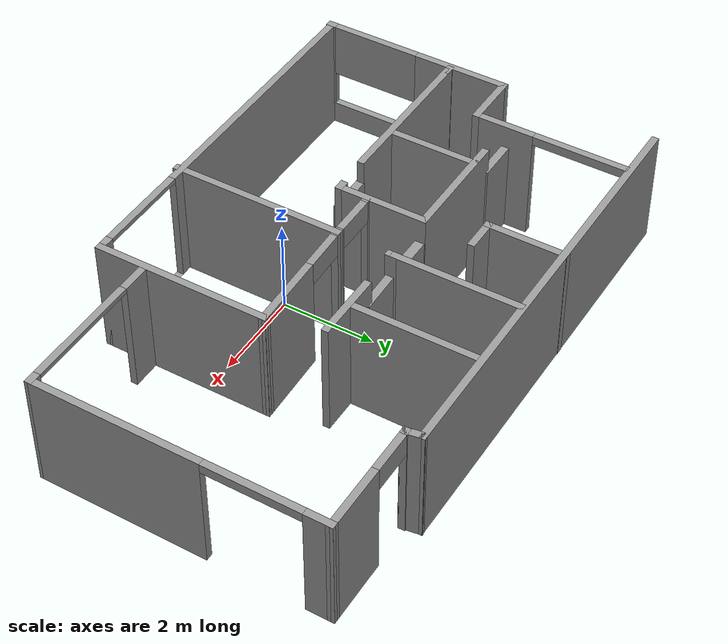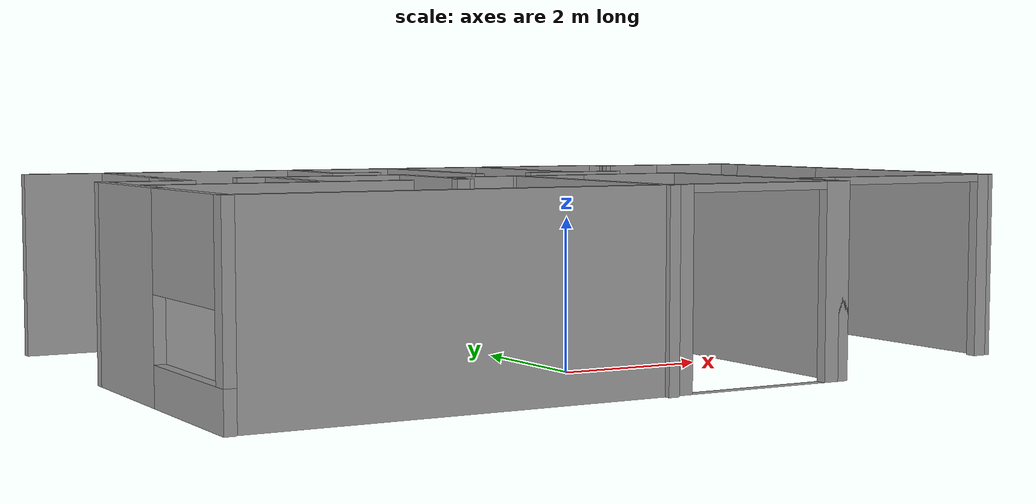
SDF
<?xml version='1.0'?>
<sdf version='1.6'>
  <model name='whiz_ex_window'>
    <pose frame=''>0.232213 1.38881 0 0 -0 0</pose>
    <link name='Door_6'>
      <collision name='Door_6_Collision'>
        <geometry>
          <box>
            <size>0.9 0.17 2</size>
          </box>
        </geometry>
        <pose frame=''>0 0 1 0 -0 0</pose>
      </collision>
      <visual name='Door_6_Visual'>
        <pose frame=''>0 0 1 0 -0 0</pose>
        <geometry>
          <box>
            <size>0.9 0.17 2</size>
          </box>
        </geometry>
        <material>
          <script>
            <uri>file://media/materials/scripts/gazebo.material</uri>
            <name>Gazebo/Grey</name>
          </script>
        </material>
      </visual>
      <pose frame=''>0.29567 1.0429 0 0 0 -3.12055</pose>
    </link>
    <link name='Door_7'>
      <collision name='Door_7_Collision'>
        <geometry>
          <box>
            <size>0.949838 0.2 2</size>
          </box>
        </geometry>
        <pose frame=''>0 0 1 0 -0 0</pose>
      </collision>
      <visual name='Door_7_Visual'>
        <pose frame=''>0 0 1 0 -0 0</pose>
        <geometry>
          <box>
            <size>0.949838 0.2 2</size>
          </box>
        </geometry>
        <material>
          <script>
            <uri>file://media/materials/scripts/gazebo.material</uri>
            <name>Gazebo/Grey</name>
          </script>
        </material>
      </visual>
      <pose frame=''>-0.776238 1.0429 0 0 -0 3.14159</pose>
    </link>
    <link name='Door_8'>
      <collision name='Door_8_Collision'>
        <geometry>
          <box>
            <size>0.9 0.17 2</size>
          </box>
        </geometry>
        <pose frame=''>0 0 1 0 -0 0</pose>
      </collision>
      <visual name='Door_8_Visual'>
        <pose frame=''>0 0 1 0 -0 0</pose>
        <geometry>
          <box>
            <size>0.9 0.17 2</size>
          </box>
        </geometry>
        <material>
          <script>
            <uri>file://media/materials/scripts/gazebo.material</uri>
            <name>Gazebo/Grey</name>
          </script>
        </material>
      </visual>
      <pose frame=''>-4.14363 1.09228 0 0 -0 0</pose>
    </link>
    <link name='Door_9'>
      <collision name='Door_9_Collision'>
        <geometry>
          <box>
            <size>0.9 0.17 2</size>
          </box>
        </geometry>
        <pose frame=''>0 0 1 0 -0 0</pose>
      </collision>
      <visual name='Door_9_Visual'>
        <pose frame=''>0 0 1 0 -0 0</pose>
        <geometry>
          <box>
            <size>0.9 0.17 2</size>
          </box>
        </geometry>
        <material>
          <script>
            <uri>file://media/materials/scripts/gazebo.material</uri>
            <name>Gazebo/Grey</name>
          </script>
        </material>
      </visual>
      <pose frame=''>-1.75347 -0.819856 0 0 0 -3.12358</pose>
    </link>
    <link name='Wall_0'>
      <pose frame=''>-1.6817 -3.67821 0 0 -0 0</pose>
      <visual name='Wall_0_Visual_0'>
        <pose frame=''>-1.17971 0 1.25 0 -0 0</pose>
        <geometry>
          <box>
            <size>5.89059 0.15 2.5</size>
          </box>
        </geometry>
        <material>
          <script>
            <uri>file://media/materials/scripts/gazebo.material</uri>
            <name>Gazebo/Grey</name>
          </script>
          <ambient>1 1 1 1</ambient>
        </material>
      </visual>
      <collision name='Wall_0_Collision_0'>
        <geometry>
          <box>
            <size>5.89059 0.15 2.5</size>
          </box>
        </geometry>
        <pose frame=''>-1.17971 0 1.25 0 -0 0</pose>
      </collision>
      <visual name='Wall_0_Visual_1'>
        <pose frame=''>3.9453 0 1.25 0 -0 0</pose>
        <geometry>
          <box>
            <size>0.35941 0.15 2.5</size>
          </box>
        </geometry>
        <material>
          <script>
            <uri>file://media/materials/scripts/gazebo.material</uri>
            <name>Gazebo/Grey</name>
          </script>
          <ambient>1 1 1 1</ambient>
        </material>
      </visual>
      <collision name='Wall_0_Collision_1'>
        <geometry>
          <box>
            <size>0.35941 0.15 2.5</size>
          </box>
        </geometry>
        <pose frame=''>3.9453 0 1.25 0 -0 0</pose>
      </collision>
      <visual name='Wall_0_Visual_2'>
        <pose frame=''>2.76559 0 0 0 -0 0</pose>
        <geometry>
          <box>
            <size>2 0.15 0</size>
          </box>
        </geometry>
        <material>
          <script>
            <uri>file://media/materials/scripts/gazebo.material</uri>
            <name>Gazebo/Grey</name>
          </script>
          <ambient>1 1 1 1</ambient>
        </material>
      </visual>
      <collision name='Wall_0_Collision_2'>
        <geometry>
          <box>
            <size>2 0.15 0</size>
          </box>
        </geometry>
        <pose frame=''>2.76559 0 0 0 -0 0</pose>
      </collision>
      <visual name='Wall_0_Visual_3'>
        <pose frame=''>2.76559 0 2.45 0 -0 0</pose>
        <geometry>
          <box>
            <size>2 0.15 0.1</size>
          </box>
        </geometry>
        <material>
          <script>
            <uri>file://media/materials/scripts/gazebo.material</uri>
            <name>Gazebo/Grey</name>
          </script>
          <ambient>1 1 1 1</ambient>
        </material>
      </visual>
      <collision name='Wall_0_Collision_3'>
        <geometry>
          <box>
            <size>2 0.15 0.1</size>
          </box>
        </geometry>
        <pose frame=''>2.76559 0 2.45 0 -0 0</pose>
      </collision>
    </link>
    <link name='Wall_1'>
      <collision name='Wall_1_Collision'>
        <geometry>
          <box>
            <size>3.75 0.15 2.5</size>
          </box>
        </geometry>
        <pose frame=''>0 0 1.25 0 -0 0</pose>
      </collision>
      <visual name='Wall_1_Visual'>
        <pose frame=''>0 0 1.25 0 -0 0</pose>
        <geometry>
          <box>
            <size>3.75 0.15 2.5</size>
          </box>
        </geometry>
        <material>
          <script>
            <uri>file://media/materials/scripts/gazebo.material</uri>
            <name>Gazebo/Grey</name>
          </script>
          <ambient>1 1 1 1</ambient>
        </material>
      </visual>
      <pose frame=''>2.3683 -1.87821 0 0 -0 1.5708</pose>
    </link>
    <link name='Wall_13'>
      <collision name='Wall_13_Collision'>
        <geometry>
          <box>
            <size>9.25 0.15 2.5</size>
          </box>
        </geometry>
        <pose frame=''>0 0 1.25 0 -0 0</pose>
      </collision>
      <visual name='Wall_13_Visual'>
        <pose frame=''>0 0 1.25 0 -0 0</pose>
        <geometry>
          <box>
            <size>9.25 0.15 2.5</size>
          </box>
        </geometry>
        <material>
          <script>
            <uri>file://media/materials/scripts/gazebo.material</uri>
            <name>Gazebo/Grey</name>
          </script>
          <ambient>1 1 1 1</ambient>
        </material>
      </visual>
      <pose frame=''>-1.19255 3.74668 0 0 -0 3.14159</pose>
    </link>
    <link name='Wall_15'>
      <pose frame=''>-4.65794 2.07148 0 0 0 -1.5708</pose>
      <visual name='Wall_15_Visual_0'>
        <pose frame=''>-1.67569 0 1.25 0 -0 0</pose>
        <geometry>
          <box>
            <size>0.148611 0.15 2.5</size>
          </box>
        </geometry>
        <material>
          <script>
            <uri>file://media/materials/scripts/gazebo.material</uri>
            <name>Gazebo/Grey</name>
          </script>
          <ambient>1 1 1 1</ambient>
        </material>
      </visual>
      <collision name='Wall_15_Collision_0'>
        <geometry>
          <box>
            <size>0.148611 0.15 2.5</size>
          </box>
        </geometry>
        <pose frame=''>-1.67569 0 1.25 0 -0 0</pose>
      </collision>
      <visual name='Wall_15_Visual_1'>
        <pose frame=''>1.07431 0 1.25 0 -0 0</pose>
        <geometry>
          <box>
            <size>1.35139 0.15 2.5</size>
          </box>
        </geometry>
        <material>
          <script>
            <uri>file://media/materials/scripts/gazebo.material</uri>
            <name>Gazebo/Grey</name>
          </script>
          <ambient>1 1 1 1</ambient>
        </material>
      </visual>
      <collision name='Wall_15_Collision_1'>
        <geometry>
          <box>
            <size>1.35139 0.15 2.5</size>
          </box>
        </geometry>
        <pose frame=''>1.07431 0 1.25 0 -0 0</pose>
      </collision>
      <visual name='Wall_15_Visual_2'>
        <pose frame=''>-0.601389 0 2.4 0 -0 0</pose>
        <geometry>
          <box>
            <size>2 0.15 0.2</size>
          </box>
        </geometry>
        <material>
          <script>
            <uri>file://media/materials/scripts/gazebo.material</uri>
            <name>Gazebo/Grey</name>
          </script>
          <ambient>1 1 1 1</ambient>
        </material>
      </visual>
      <collision name='Wall_15_Collision_2'>
        <geometry>
          <box>
            <size>2 0.15 0.2</size>
          </box>
        </geometry>
        <pose frame=''>-0.601389 0 2.4 0 -0 0</pose>
      </collision>
    </link>
    <link name='Wall_16'>
      <collision name='Wall_16_Collision'>
        <geometry>
          <box>
            <size>1.25 0.15 2.5</size>
          </box>
        </geometry>
        <pose frame=''>0 0 1.25 0 -0 0</pose>
      </collision>
      <visual name='Wall_16_Visual'>
        <pose frame=''>0 0 1.25 0 -0 0</pose>
        <geometry>
          <box>
            <size>1.25 0.15 2.5</size>
          </box>
        </geometry>
        <material>
          <script>
            <uri>file://media/materials/scripts/gazebo.material</uri>
            <name>Gazebo/Grey</name>
          </script>
          <ambient>1 1 1 1</ambient>
        </material>
      </visual>
      <pose frame=''>-5.20794 0.396477 0 0 -0 3.14159</pose>
    </link>
    <link name='Wall_17'>
      <pose frame=''>-5.75794 -1.65352 0 0 0 -1.5708</pose>
      <visual name='Wall_17_Visual_0'>
        <pose frame=''>-1.07794 0 1.25 0 -0 0</pose>
        <geometry>
          <box>
            <size>2.09412 0.15 2.5</size>
          </box>
        </geometry>
        <material>
          <script>
            <uri>file://media/materials/scripts/gazebo.material</uri>
            <name>Gazebo/Grey</name>
          </script>
          <ambient>1 1 1 1</ambient>
        </material>
      </visual>
      <collision name='Wall_17_Collision_0'>
        <geometry>
          <box>
            <size>2.09412 0.15 2.5</size>
          </box>
        </geometry>
        <pose frame=''>-1.07794 0 1.25 0 -0 0</pose>
      </collision>
      <visual name='Wall_17_Visual_1'>
        <pose frame=''>1.04706 0 0.25 0 -0 0</pose>
        <geometry>
          <box>
            <size>2.15588 0.15 0.5</size>
          </box>
        </geometry>
        <material>
          <script>
            <uri>file://media/materials/scripts/gazebo.material</uri>
            <name>Gazebo/Grey</name>
          </script>
          <ambient>1 1 1 1</ambient>
        </material>
      </visual>
      <collision name='Wall_17_Collision_1'>
        <geometry>
          <box>
            <size>2.15588 0.15 0.5</size>
          </box>
        </geometry>
        <pose frame=''>1.04706 0 0.25 0 -0 0</pose>
      </collision>
      <visual name='Wall_17_Visual_2'>
        <pose frame=''>2.01762 0 1.5 0 -0 0</pose>
        <geometry>
          <box>
            <size>0.214766 0.15 2</size>
          </box>
        </geometry>
        <material>
          <script>
            <uri>file://media/materials/scripts/gazebo.material</uri>
            <name>Gazebo/Grey</name>
          </script>
          <ambient>1 1 1 1</ambient>
        </material>
      </visual>
      <collision name='Wall_17_Collision_2'>
        <geometry>
          <box>
            <size>0.214766 0.15 2</size>
          </box>
        </geometry>
        <pose frame=''>2.01762 0 1.5 0 -0 0</pose>
      </collision>
      <visual name='Wall_17_Visual_3'>
        <pose frame=''>0.939679 0 1.9 0 -0 0</pose>
        <geometry>
          <box>
            <size>1.94111 0.15 1.2</size>
          </box>
        </geometry>
        <material>
          <script>
            <uri>file://media/materials/scripts/gazebo.material</uri>
            <name>Gazebo/Grey</name>
          </script>
          <ambient>1 1 1 1</ambient>
        </material>
      </visual>
      <collision name='Wall_17_Collision_3'>
        <geometry>
          <box>
            <size>1.94111 0.15 1.2</size>
          </box>
        </geometry>
        <pose frame=''>0.939679 0 1.9 0 -0 0</pose>
      </collision>
    </link>
    <link name='Wall_19'>
      <collision name='Wall_19_Collision'>
        <geometry>
          <box>
            <size>2.5 0.15 2.5</size>
          </box>
        </geometry>
        <pose frame=''>0 0 1.25 0 -0 0</pose>
      </collision>
      <visual name='Wall_19_Visual'>
        <pose frame=''>0 0 1.25 0 -0 0</pose>
        <geometry>
          <box>
            <size>2.5 0.15 2.5</size>
          </box>
        </geometry>
        <material>
          <script>
            <uri>file://media/materials/scripts/gazebo.material</uri>
            <name>Gazebo/Grey</name>
          </script>
          <ambient>1 1 1 1</ambient>
        </material>
      </visual>
      <pose frame=''>-2.53404 1.06604 0 0 -0 0</pose>
    </link>
    <link name='Wall_20'>
      <collision name='Wall_20_Collision'>
        <geometry>
          <box>
            <size>2 0.15 2.5</size>
          </box>
        </geometry>
        <pose frame=''>0 0 1.25 0 -0 0</pose>
      </collision>
      <visual name='Wall_20_Visual'>
        <pose frame=''>0 0 1.25 0 -0 0</pose>
        <geometry>
          <box>
            <size>2 0.15 2.5</size>
          </box>
        </geometry>
        <material>
          <script>
            <uri>file://media/materials/scripts/gazebo.material</uri>
            <name>Gazebo/Grey</name>
          </script>
          <ambient>1 1 1 1</ambient>
        </material>
      </visual>
      <pose frame=''>-1.35904 0.141035 0 0 0 -1.5708</pose>
    </link>
    <link name='Wall_21'>
      <collision name='Wall_21_Collision'>
        <geometry>
          <box>
            <size>0.25 0.15 2.5</size>
          </box>
        </geometry>
        <pose frame=''>0 0 1.25 0 -0 0</pose>
      </collision>
      <visual name='Wall_21_Visual'>
        <pose frame=''>0 0 1.25 0 -0 0</pose>
        <geometry>
          <box>
            <size>0.25 0.15 2.5</size>
          </box>
        </geometry>
        <material>
          <script>
            <uri>file://media/materials/scripts/gazebo.material</uri>
            <name>Gazebo/Grey</name>
          </script>
          <ambient>1 1 1 1</ambient>
        </material>
      </visual>
      <pose frame=''>-1.40904 -0.783965 0 0 -0 3.14159</pose>
    </link>
    <link name='Wall_23'>
      <collision name='Wall_23_Collision'>
        <geometry>
          <box>
            <size>3.5 0.15 2.5</size>
          </box>
        </geometry>
        <pose frame=''>0 0 1.25 0 -0 0</pose>
      </collision>
      <visual name='Wall_23_Visual'>
        <pose frame=''>0 0 1.25 0 -0 0</pose>
        <geometry>
          <box>
            <size>3.5 0.15 2.5</size>
          </box>
        </geometry>
        <material>
          <script>
            <uri>file://media/materials/scripts/gazebo.material</uri>
            <name>Gazebo/Grey</name>
          </script>
          <ambient>1 1 1 1</ambient>
        </material>
      </visual>
      <pose frame=''>-3.91607 -0.818528 0 0 -0 3.14159</pose>
    </link>
    <link name='Wall_24'>
      <collision name='Wall_24_Collision'>
        <geometry>
          <box>
            <size>0.25 0.15 2.5</size>
          </box>
        </geometry>
        <pose frame=''>0 0 1.25 0 -0 0</pose>
      </collision>
      <visual name='Wall_24_Visual'>
        <pose frame=''>0 0 1.25 0 -0 0</pose>
        <geometry>
          <box>
            <size>0.25 0.15 2.5</size>
          </box>
        </geometry>
        <material>
          <script>
            <uri>file://media/materials/scripts/gazebo.material</uri>
            <name>Gazebo/Grey</name>
          </script>
          <ambient>1 1 1 1</ambient>
        </material>
      </visual>
      <pose frame=''>-5.64107 -0.818528 0 0 -0 3.14159</pose>
    </link>
    <link name='Wall_26'>
      <collision name='Wall_26_Collision'>
        <geometry>
          <box>
            <size>2 0.15 2.5</size>
          </box>
        </geometry>
        <pose frame=''>0 0 1.25 0 -0 0</pose>
      </collision>
      <visual name='Wall_26_Visual'>
        <pose frame=''>0 0 1.25 0 -0 0</pose>
        <geometry>
          <box>
            <size>2 0.15 2.5</size>
          </box>
        </geometry>
        <material>
          <script>
            <uri>file://media/materials/scripts/gazebo.material</uri>
            <name>Gazebo/Grey</name>
          </script>
          <ambient>1 1 1 1</ambient>
        </material>
      </visual>
      <pose frame=''>-3.31229 0.121197 0 0 0 -1.5708</pose>
    </link>
    <link name='Wall_28'>
      <collision name='Wall_28_Collision'>
        <geometry>
          <box>
            <size>1.75 0.15 2.5</size>
          </box>
        </geometry>
        <pose frame=''>0 0 1.25 0 -0 0</pose>
      </collision>
      <visual name='Wall_28_Visual'>
        <pose frame=''>0 0 1.25 0 -0 0</pose>
        <geometry>
          <box>
            <size>1.75 0.15 2.5</size>
          </box>
        </geometry>
        <material>
          <script>
            <uri>file://media/materials/scripts/gazebo.material</uri>
            <name>Gazebo/Grey</name>
          </script>
          <ambient>1 1 1 1</ambient>
        </material>
      </visual>
      <pose frame=''>-1.86043 2.95447 0 0 0 -1.5708</pose>
    </link>
    <link name='Wall_30'>
      <collision name='Wall_30_Collision'>
        <geometry>
          <box>
            <size>0.75 0.15 2.5</size>
          </box>
        </geometry>
        <pose frame=''>0 0 1.25 0 -0 0</pose>
      </collision>
      <visual name='Wall_30_Visual'>
        <pose frame=''>0 0 1.25 0 -0 0</pose>
        <geometry>
          <box>
            <size>0.75 0.15 2.5</size>
          </box>
        </geometry>
        <material>
          <script>
            <uri>file://media/materials/scripts/gazebo.material</uri>
            <name>Gazebo/Grey</name>
          </script>
          <ambient>1 1 1 1</ambient>
        </material>
      </visual>
      <pose frame=''>-1.56043 2.15447 0 0 -0 0</pose>
    </link>
    <link name='Wall_32'>
      <collision name='Wall_32_Collision'>
        <geometry>
          <box>
            <size>2.75 0.15 2.5</size>
          </box>
        </geometry>
        <pose frame=''>0 0 1.25 0 -0 0</pose>
      </collision>
      <visual name='Wall_32_Visual'>
        <pose frame=''>0 0 1.25 0 -0 0</pose>
        <geometry>
          <box>
            <size>2.75 0.15 2.5</size>
          </box>
        </geometry>
        <material>
          <script>
            <uri>file://media/materials/scripts/gazebo.material</uri>
            <name>Gazebo/Grey</name>
          </script>
          <ambient>1 1 1 1</ambient>
        </material>
      </visual>
      <pose frame=''>-0.228595 2.39065 0 0 0 -1.5708</pose>
    </link>
    <link name='Wall_35'>
      <collision name='Wall_35_Collision'>
        <geometry>
          <box>
            <size>2.75 0.15 2.5</size>
          </box>
        </geometry>
        <pose frame=''>0 0 1.25 0 -0 0</pose>
      </collision>
      <visual name='Wall_35_Visual'>
        <pose frame=''>0 0 1.25 0 -0 0</pose>
        <geometry>
          <box>
            <size>2.75 0.15 2.5</size>
          </box>
        </geometry>
        <material>
          <script>
            <uri>file://media/materials/scripts/gazebo.material</uri>
            <name>Gazebo/Grey</name>
          </script>
          <ambient>1 1 1 1</ambient>
        </material>
      </visual>
      <pose frame=''>1.29304 2.34692 0 0 0 -1.5708</pose>
    </link>
    <link name='Wall_37'>
      <collision name='Wall_37_Collision'>
        <geometry>
          <box>
            <size>1.5 0.15 2.5</size>
          </box>
        </geometry>
        <pose frame=''>0 0 1.25 0 -0 0</pose>
      </collision>
      <visual name='Wall_37_Visual'>
        <pose frame=''>0 0 1.25 0 -0 0</pose>
        <geometry>
          <box>
            <size>1.5 0.15 2.5</size>
          </box>
        </geometry>
        <material>
          <script>
            <uri>file://media/materials/scripts/gazebo.material</uri>
            <name>Gazebo/Grey</name>
          </script>
          <ambient>1 1 1 1</ambient>
        </material>
      </visual>
      <pose frame=''>1.36463 1.03216 0 0 -0 0</pose>
    </link>
    <link name='Wall_4'>
      <pose frame=''>4.05869 -2.66379 0 0 -0 0</pose>
      <visual name='Wall_4_Visual_0'>
        <pose frame=''>-1.38368 0 1.25 0 -0 0</pose>
        <geometry>
          <box>
            <size>0.732645 0.15 2.5</size>
          </box>
        </geometry>
        <material>
          <script>
            <uri>file://media/materials/scripts/gazebo.material</uri>
            <name>Gazebo/Grey</name>
          </script>
          <ambient>1 1 1 1</ambient>
        </material>
      </visual>
      <collision name='Wall_4_Collision_0'>
        <geometry>
          <box>
            <size>0.732645 0.15 2.5</size>
          </box>
        </geometry>
        <pose frame=''>-1.38368 0 1.25 0 -0 0</pose>
      </collision>
      <visual name='Wall_4_Visual_1'>
        <pose frame=''>1.61632 0 1.25 0 -0 0</pose>
        <geometry>
          <box>
            <size>0.267355 0.15 2.5</size>
          </box>
        </geometry>
        <material>
          <script>
            <uri>file://media/materials/scripts/gazebo.material</uri>
            <name>Gazebo/Grey</name>
          </script>
          <ambient>1 1 1 1</ambient>
        </material>
      </visual>
      <collision name='Wall_4_Collision_1'>
        <geometry>
          <box>
            <size>0.267355 0.15 2.5</size>
          </box>
        </geometry>
        <pose frame=''>1.61632 0 1.25 0 -0 0</pose>
      </collision>
      <visual name='Wall_4_Visual_2'>
        <pose frame=''>0.232645 0 2.45 0 -0 0</pose>
        <geometry>
          <box>
            <size>2.5 0.15 0.1</size>
          </box>
        </geometry>
        <material>
          <script>
            <uri>file://media/materials/scripts/gazebo.material</uri>
            <name>Gazebo/Grey</name>
          </script>
          <ambient>1 1 1 1</ambient>
        </material>
      </visual>
      <collision name='Wall_4_Collision_2'>
        <geometry>
          <box>
            <size>2.5 0.15 0.1</size>
          </box>
        </geometry>
        <pose frame=''>0.232645 0 2.45 0 -0 0</pose>
      </collision>
    </link>
    <link name='Wall_41'>
      <collision name='Wall_41_Collision'>
        <geometry>
          <box>
            <size>0.25 0.15 2.5</size>
          </box>
        </geometry>
        <pose frame=''>0 0 1.25 0 -0 0</pose>
      </collision>
      <visual name='Wall_41_Visual'>
        <pose frame=''>0 0 1.25 0 -0 0</pose>
        <geometry>
          <box>
            <size>0.25 0.15 2.5</size>
          </box>
        </geometry>
        <material>
          <script>
            <uri>file://media/materials/scripts/gazebo.material</uri>
            <name>Gazebo/Grey</name>
          </script>
          <ambient>1 1 1 1</ambient>
        </material>
      </visual>
      <pose frame=''>-0.228595 1.04065 0 0 0 -1.5708</pose>
    </link>
    <link name='Wall_44'>
      <collision name='Wall_44_Collision'>
        <geometry>
          <box>
            <size>3.75 0.15 2.5</size>
          </box>
        </geometry>
        <pose frame=''>0 0 1.25 0 -0 0</pose>
      </collision>
      <visual name='Wall_44_Visual'>
        <pose frame=''>0 0 1.25 0 -0 0</pose>
        <geometry>
          <box>
            <size>3.75 0.15 2.5</size>
          </box>
        </geometry>
        <material>
          <script>
            <uri>file://media/materials/scripts/gazebo.material</uri>
            <name>Gazebo/Grey</name>
          </script>
          <ambient>1 1 1 1</ambient>
        </material>
      </visual>
      <pose frame=''>-0.233629 -1.95772 0 0 0 -1.5708</pose>
    </link>
    <link name='Wall_50'>
      <pose frame=''>5.74567 0.386841 0 0 0 -1.57472</pose>
      <visual name='Wall_50_Visual_0'>
        <pose frame=''>-2.83254 0 1.25 0 -0 0</pose>
        <geometry>
          <box>
            <size>0.586231 0.15 2.5</size>
          </box>
        </geometry>
        <material>
          <script>
            <uri>file://media/materials/scripts/gazebo.material</uri>
            <name>Gazebo/Grey</name>
          </script>
          <ambient>1 1 1 1</ambient>
        </material>
      </visual>
      <collision name='Wall_50_Collision_0'>
        <geometry>
          <box>
            <size>0.586231 0.15 2.5</size>
          </box>
        </geometry>
        <pose frame=''>-2.83254 0 1.25 0 -0 0</pose>
      </collision>
      <visual name='Wall_50_Visual_1'>
        <pose frame=''>1.30211 0 1.25 0 -0 0</pose>
        <geometry>
          <box>
            <size>3.64708 0.15 2.5</size>
          </box>
        </geometry>
        <material>
          <script>
            <uri>file://media/materials/scripts/gazebo.material</uri>
            <name>Gazebo/Grey</name>
          </script>
          <ambient>1 1 1 1</ambient>
        </material>
      </visual>
      <collision name='Wall_50_Collision_1'>
        <geometry>
          <box>
            <size>3.64708 0.15 2.5</size>
          </box>
        </geometry>
        <pose frame=''>1.30211 0 1.25 0 -0 0</pose>
      </collision>
      <visual name='Wall_50_Visual_2'>
        <pose frame=''>-1.53042 0 2.4 0 -0 0</pose>
        <geometry>
          <box>
            <size>2.018 0.15 0.2</size>
          </box>
        </geometry>
        <material>
          <script>
            <uri>file://media/materials/scripts/gazebo.material</uri>
            <name>Gazebo/Grey</name>
          </script>
          <ambient>1 1 1 1</ambient>
        </material>
      </visual>
      <collision name='Wall_50_Collision_2'>
        <geometry>
          <box>
            <size>2.018 0.15 0.2</size>
          </box>
        </geometry>
        <pose frame=''>-1.53042 0 2.4 0 -0 0</pose>
      </collision>
    </link>
    <link name='Wall_52'>
      <pose frame=''>4.58265 3.43747 0 0 -0 3.14159</pose>
      <visual name='Wall_52_Visual_0'>
        <pose frame=''>-0.530284 0 1.25 0 -0 0</pose>
        <geometry>
          <box>
            <size>1.43943 0.15 2.5</size>
          </box>
        </geometry>
        <material>
          <script>
            <uri>file://media/materials/scripts/gazebo.material</uri>
            <name>Gazebo/Grey</name>
          </script>
          <ambient>1 1 1 1</ambient>
        </material>
      </visual>
      <collision name='Wall_52_Collision_0'>
        <geometry>
          <box>
            <size>1.43943 0.15 2.5</size>
          </box>
        </geometry>
        <pose frame=''>-0.530284 0 1.25 0 -0 0</pose>
      </collision>
      <visual name='Wall_52_Visual_1'>
        <pose frame=''>1.16972 0 1.25 0 -0 0</pose>
        <geometry>
          <box>
            <size>0.160568 0.15 2.5</size>
          </box>
        </geometry>
        <material>
          <script>
            <uri>file://media/materials/scripts/gazebo.material</uri>
            <name>Gazebo/Grey</name>
          </script>
          <ambient>1 1 1 1</ambient>
        </material>
      </visual>
      <collision name='Wall_52_Collision_1'>
        <geometry>
          <box>
            <size>0.160568 0.15 2.5</size>
          </box>
        </geometry>
        <pose frame=''>1.16972 0 1.25 0 -0 0</pose>
      </collision>
      <visual name='Wall_52_Visual_2'>
        <pose frame=''>0.639432 0 2.25 0 -0 0</pose>
        <geometry>
          <box>
            <size>0.9 0.15 0.5</size>
          </box>
        </geometry>
        <material>
          <script>
            <uri>file://media/materials/scripts/gazebo.material</uri>
            <name>Gazebo/Grey</name>
          </script>
          <ambient>1 1 1 1</ambient>
        </material>
      </visual>
      <collision name='Wall_52_Collision_2'>
        <geometry>
          <box>
            <size>0.9 0.15 0.5</size>
          </box>
        </geometry>
        <pose frame=''>0.639432 0 2.25 0 -0 0</pose>
      </collision>
    </link>
    <link name='Wall_53'>
      <collision name='Wall_53_Collision'>
        <geometry>
          <box>
            <size>0.463251 0.15 2.5</size>
          </box>
        </geometry>
        <pose frame=''>0 0 1.25 0 -0 0</pose>
      </collision>
      <visual name='Wall_53_Visual'>
        <pose frame=''>0 0 1.25 0 -0 0</pose>
        <geometry>
          <box>
            <size>0.463251 0.15 2.5</size>
          </box>
        </geometry>
        <material>
          <script>
            <uri>file://media/materials/scripts/gazebo.material</uri>
            <name>Gazebo/Grey</name>
          </script>
          <ambient>1 1 1 1</ambient>
        </material>
      </visual>
      <pose frame=''>3.38255 3.59207 0 0 -0 1.73174</pose>
    </link>
    <link name='Wall_55'>
      <pose frame=''>1.06733 -0.11797 0 0 -0 0.030549</pose>
      <visual name='Wall_55_Visual_0'>
        <pose frame=''>-1.28558 0 1.25 0 -0 0</pose>
        <geometry>
          <box>
            <size>0.181978 0.15 2.5</size>
          </box>
        </geometry>
        <material>
          <script>
            <uri>file://media/materials/scripts/gazebo.material</uri>
            <name>Gazebo/Grey</name>
          </script>
          <ambient>1 1 1 1</ambient>
        </material>
      </visual>
      <collision name='Wall_55_Collision_0'>
        <geometry>
          <box>
            <size>0.181978 0.15 2.5</size>
          </box>
        </geometry>
        <pose frame=''>-1.28558 0 1.25 0 -0 0</pose>
      </collision>
      <visual name='Wall_55_Visual_1'>
        <pose frame=''>0.540989 0 1.25 0 -0 0</pose>
        <geometry>
          <box>
            <size>1.67116 0.15 2.5</size>
          </box>
        </geometry>
        <material>
          <script>
            <uri>file://media/materials/scripts/gazebo.material</uri>
            <name>Gazebo/Grey</name>
          </script>
          <ambient>1 1 1 1</ambient>
        </material>
      </visual>
      <collision name='Wall_55_Collision_1'>
        <geometry>
          <box>
            <size>1.67116 0.15 2.5</size>
          </box>
        </geometry>
        <pose frame=''>0.540989 0 1.25 0 -0 0</pose>
      </collision>
      <visual name='Wall_55_Visual_2'>
        <pose frame=''>-0.744593 0 2.25 0 -0 0</pose>
        <geometry>
          <box>
            <size>0.9 0.15 0.5</size>
          </box>
        </geometry>
        <material>
          <script>
            <uri>file://media/materials/scripts/gazebo.material</uri>
            <name>Gazebo/Grey</name>
          </script>
          <ambient>1 1 1 1</ambient>
        </material>
      </visual>
      <collision name='Wall_55_Collision_2'>
        <geometry>
          <box>
            <size>0.9 0.15 0.5</size>
          </box>
        </geometry>
        <pose frame=''>-0.744593 0 2.25 0 -0 0</pose>
      </collision>
    </link>
    <link name='Wall_57'>
      <pose frame=''>-0.766361 -0.161298 0 0 -0 0.006708</pose>
      <visual name='Wall_57_Visual_0'>
        <pose frame=''>-0.534301 0 1.25 0 -0 0</pose>
        <geometry>
          <box>
            <size>0.146885 0.15 2.5</size>
          </box>
        </geometry>
        <material>
          <script>
            <uri>file://media/materials/scripts/gazebo.material</uri>
            <name>Gazebo/Grey</name>
          </script>
          <ambient>1 1 1 1</ambient>
        </material>
      </visual>
      <collision name='Wall_57_Collision_0'>
        <geometry>
          <box>
            <size>0.146885 0.15 2.5</size>
          </box>
        </geometry>
        <pose frame=''>-0.534301 0 1.25 0 -0 0</pose>
      </collision>
      <visual name='Wall_57_Visual_1'>
        <pose frame=''>0.511599 0 1.25 0 -0 0</pose>
        <geometry>
          <box>
            <size>0.19229 0.15 2.5</size>
          </box>
        </geometry>
        <material>
          <script>
            <uri>file://media/materials/scripts/gazebo.material</uri>
            <name>Gazebo/Grey</name>
          </script>
          <ambient>1 1 1 1</ambient>
        </material>
      </visual>
      <collision name='Wall_57_Collision_1'>
        <geometry>
          <box>
            <size>0.19229 0.15 2.5</size>
          </box>
        </geometry>
        <pose frame=''>0.511599 0 1.25 0 -0 0</pose>
      </collision>
      <visual name='Wall_57_Visual_2'>
        <pose frame=''>-0.022702 0 2.25 0 -0 0</pose>
        <geometry>
          <box>
            <size>0.876312 0.15 0.5</size>
          </box>
        </geometry>
        <material>
          <script>
            <uri>file://media/materials/scripts/gazebo.material</uri>
            <name>Gazebo/Grey</name>
          </script>
          <ambient>1 1 1 1</ambient>
        </material>
      </visual>
      <collision name='Wall_57_Collision_2'>
        <geometry>
          <box>
            <size>0.876312 0.15 0.5</size>
          </box>
        </geometry>
        <pose frame=''>-0.022702 0 2.25 0 -0 0</pose>
      </collision>
    </link>
    <static>1</static>
  </model>
</sdf>
